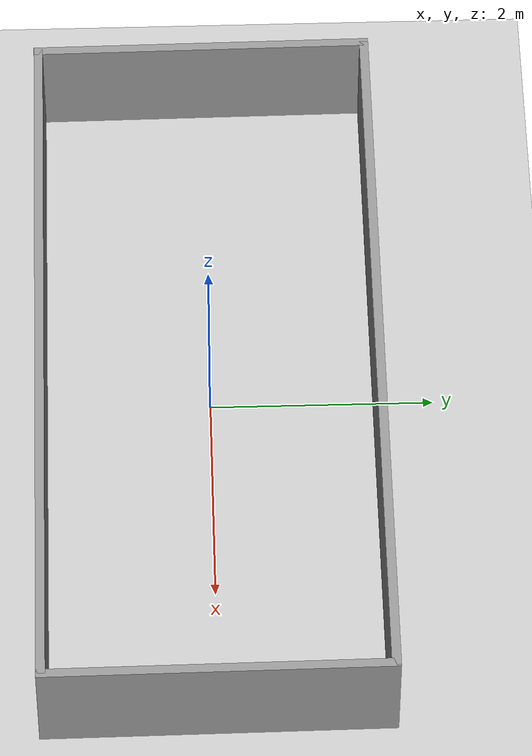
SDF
<sdf version="1.6">
 <world name="default">
  <light name="sun" type="directional">
   <pose>0 0 10 0 -0 0</pose>
   <diffuse>0.8 0.8 0.8 1</diffuse>
   <specular>0.1 0.1 0.1 1</specular>
   <attenuation>
    <range>1000</range>
    <constant>0.9</constant>
    <linear>0.01</linear>
    <quadratic>0.001</quadratic>
   </attenuation>
   <direction>-0.5 0.5 -1</direction>
  </light>
  <model name="ground_plane">
   <static>1</static>
   <link name="link">
    <collision name="collision">
     <geometry><plane><normal>0 0 1</normal><size>100 100</size></plane></geometry>
     <surface><friction><ode><mu>100</mu><mu2>50</mu2></ode></friction></surface>
    </collision>
    <visual name="visual">
     <cast_shadows>0</cast_shadows>
     <geometry><plane><normal>0 0 1</normal><size>100 100</size></plane></geometry>
     <material>
      <script><uri>file://media/materials/scripts/gazebo.material</uri><name>Gazebo/Grey</name></script>
     </material>
    </visual>
   </link>
  </model>
  <gravity>0 0 -9.8</gravity>
  <magnetic_field>6e-06 2.3e-05 -4.2e-05</magnetic_field>
  <atmosphere type="adiabatic"/>
  <physics name="default_physics" default="0" type="ode">
   <max_step_size>0.001</max_step_size>
   <real_time_factor>1</real_time_factor>
   <real_time_update_rate>1000</real_time_update_rate>
  </physics>
  <scene><ambient>0.4 0.4 0.4 1</ambient><background>0.7 0.7 0.7 1</background><shadows>1</shadows></scene>
  <spherical_coordinates>
   <surface_model>EARTH_WGS84</surface_model>
   <latitude_deg>0</latitude_deg>
   <longitude_deg>0</longitude_deg>
   <elevation>0</elevation>
   <heading_deg>0</heading_deg>
  </spherical_coordinates>
  <model name="unit_box">
   <static>1</static>
   <pose>0 -1.5 0.5 0 -0 0</pose>
   <link name="link">
    <inertial>
     <mass>1</mass>
     <inertia>
      <ixx>0.166667</ixx>
      <ixy>0</ixy>
      <ixz>0</ixz>
      <iyy>0.166667</iyy>
      <iyz>0</iyz>
      <izz>0.166667</izz>
     </inertia>
    </inertial>
    <collision name="collision"><geometry><box><size>6.77305 0.0812376 1</size></box></geometry></collision>
    <visual name="visual">
     <geometry><box><size>6.77305 0.0812376 1</size></box></geometry>
     <material>
      <script><name>Gazebo/Grey</name><uri>file://media/materials/scripts/gazebo.material</uri></script>
     </material>
    </visual>
   </link>
  </model>
  <model name="unit_box_clone">
   <static>1</static>
   <pose>0 1.5 0.5 0 -0 0</pose>
   <link name="link">
    <inertial>
     <mass>1</mass>
     <inertia>
      <ixx>0.166667</ixx>
      <ixy>0</ixy>
      <ixz>0</ixz>
      <iyy>0.166667</iyy>
      <iyz>0</iyz>
      <izz>0.166667</izz>
     </inertia>
    </inertial>
    <collision name="collision"><geometry><box><size>6.77305 0.081238 1</size></box></geometry></collision>
    <visual name="visual">
     <geometry><box><size>6.77305 0.081238 1</size></box></geometry>
     <material>
      <script><name>Gazebo/Grey</name><uri>file://media/materials/scripts/gazebo.material</uri></script>
     </material>
    </visual>
   </link>
  </model>
  <model name="unit_box_clone_clone">
   <static>1</static>
   <pose>-3.36859 7.6e-05 0.5 0 -0 1.57987</pose>
   <link name="link">
    <inertial>
     <mass>1</mass>
     <inertia>
      <ixx>0.166667</ixx>
      <ixy>0</ixy>
      <ixz>0</ixz>
      <iyy>0.166667</iyy>
      <iyz>0</iyz>
      <izz>0.166667</izz>
     </inertia>
    </inertial>
    <collision name="collision"><geometry><box><size>3.08055 0.081238 1</size></box></geometry></collision>
    <visual name="visual">
     <geometry><box><size>3.08055 0.081238 1</size></box></geometry>
     <material>
      <script><name>Gazebo/Grey</name><uri>file://media/materials/scripts/gazebo.material</uri></script>
     </material>
    </visual>
   </link>
  </model>
  <model name="unit_box_clone_clone_clone">
   <static>1</static>
   <pose>3.37478 -0.000585 0.5 0 -0 1.57987</pose>
   <link name="link">
    <inertial>
     <mass>1</mass>
     <inertia>
      <ixx>0.166667</ixx>
      <ixy>0</ixy>
      <ixz>0</ixz>
      <iyy>0.166667</iyy>
      <iyz>0</iyz>
      <izz>0.166667</izz>
     </inertia>
    </inertial>
    <collision name="collision"><geometry><box><size>3.08055 0.081238 1</size></box></geometry></collision>
    <visual name="visual">
     <geometry><box><size>3.08055 0.081238 1</size></box></geometry>
     <material>
      <script><name>Gazebo/Grey</name><uri>file://media/materials/scripts/gazebo.material</uri></script>
     </material>
    </visual>
   </link>
  </model>
 </world>
</sdf>
